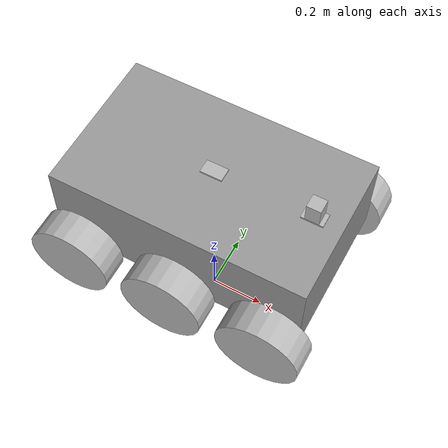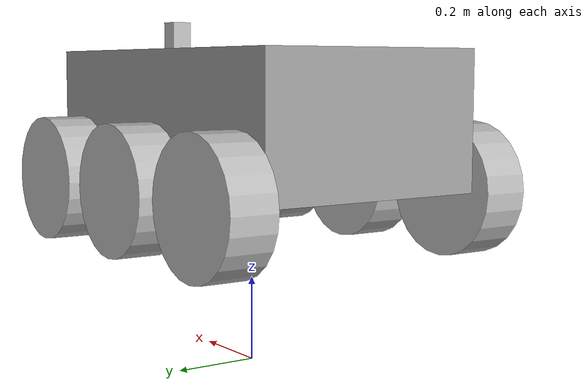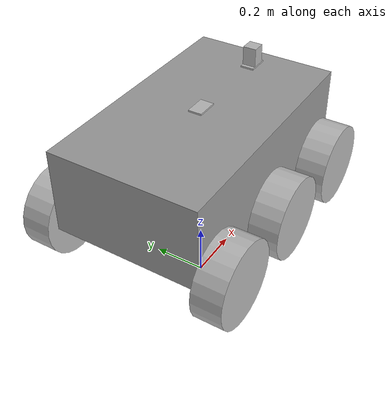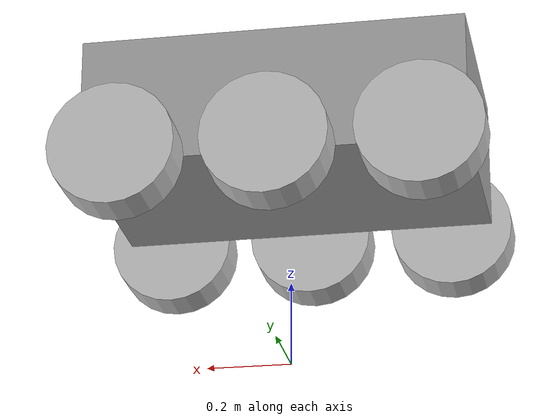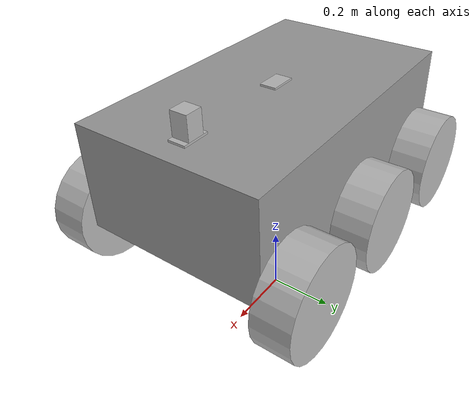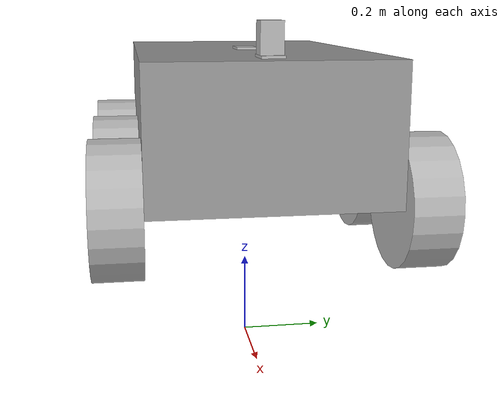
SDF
<sdf version='1.7'>
  <model name='panther'>
    <link name='base_footprint'>
      <inertial>
        <pose>0 0 0.586 0 -0 0</pose>
        <mass>55</mass>
        <inertia>
          <ixx>2.743</ixx>
          <ixy>0</ixy>
          <ixz>0</ixz>
          <iyy>5.705</iyy>
          <iyz>0</iyz>
          <izz>6.801</izz>
        </inertia>
      </inertial>
      <collision name='base_footprint_fixed_joint_lump__base_link_collision'>
        <pose>0 0 0.586 0 -0 0</pose>
        <geometry>
          <box>
            <size>0.914 0.53975 0.312</size>
          </box>
        </geometry>
        <surface>
          <contact>
            <ode/>
          </contact>
          <friction>
            <ode/>
          </friction>
        </surface>
      </collision>
      <collision name='base_footprint_fixed_joint_lump__hokuyo_link_collision_1'>
        <pose>0.356108 0 0.745 0 -0 0</pose>
        <geometry>
          <box>
            <size>0.079 0.05 0.006</size>
          </box>
        </geometry>
      </collision>
      <collision name='base_footprint_fixed_joint_lump__hokuyo_link_collision_2'>
        <pose>0.356108 0 0.783 0 -0 0</pose>
        <geometry>
          <box>
            <size>0.05 0.05 0.07</size>
          </box>
        </geometry>
      </collision>
      <collision name='base_footprint_fixed_joint_lump__imu_link_collision_3'>
        <pose>0 0 0.745 0 -0 0</pose>
        <geometry>
          <box>
            <size>0.079 0.05 0.006</size>
          </box>
        </geometry>
        <surface>
          <contact>
            <ode/>
          </contact>
          <friction>
            <ode/>
          </friction>
        </surface>
      </collision>
      <visual name='base_footprint_fixed_joint_lump__base_link_visual'>
        <pose>0 0 0.586 0 -0 0</pose>
        <geometry>
          <box>
            <size>0.914 0.53975 0.312</size>
          </box>
        </geometry>
        <material>
          <script>
            <name>Gazebo/Grey</name>
            <uri>file://media/materials/scripts/gazebo.material</uri>
          </script>
        </material>
      </visual>
      <visual name='base_footprint_fixed_joint_lump__hokuyo_link_visual_1'>
        <pose>0.356108 0 0.745 0 -0 0</pose>
        <geometry>
          <box>
            <size>0.079 0.05 0.006</size>
          </box>
        </geometry>
      </visual>
      <visual name='base_footprint_fixed_joint_lump__hokuyo_link_visual_2'>
        <pose>0.356108 0 0.783 0 -0 0</pose>
        <geometry>
          <box>
            <size>0.05 0.05 0.07</size>
          </box>
        </geometry>
      </visual>
      <visual name='base_footprint_fixed_joint_lump__imu_link_visual_3'>
        <pose>0 0 0.745 0 -0 0</pose>
        <geometry>
          <box>
            <size>0.079 0.05 0.006</size>
          </box>
        </geometry>
      </visual>
      <visual name='base_footprint_fixed_joint_lump__ml_wheel_link_visual_4'>
        <pose>0 0.323875 0.43 -1.5708 0 0</pose>
        <geometry>
          <cylinder>
            <length>0.108</length>
            <radius>0.15</radius>
          </cylinder>
        </geometry>
      </visual>
      <visual name='base_footprint_fixed_joint_lump__mr_wheel_link_visual_5'>
        <pose>0 -0.323875 0.43 1.5708 -0 0</pose>
        <geometry>
          <cylinder>
            <length>0.108</length>
            <radius>0.15</radius>
          </cylinder>
        </geometry>
      </visual>
      <sensor name='head_hokuyo_sensor' type='ray'>
        <visualize>1</visualize>
        <update_rate>100</update_rate>
        <ray>
          <scan>
            <horizontal>
              <samples>1080</samples>
              <resolution>1</resolution>
              <min_angle>-2.35619</min_angle>
              <max_angle>2.35619</max_angle>
            </horizontal>
          </scan>
          <range>
            <min>0.1</min>
            <max>30</max>
            <resolution>0.01</resolution>
          </range>
          <noise>
            <type>gaussian</type>
            <mean>0</mean>
            <stddev>0.01</stddev>
          </noise>
        </ray>
        <plugin name='gazebo_ros_head_hokuyo_controller' filename='libgazebo_ros_laser.so'>
          <topicName>/scan</topicName>
          <frameName>hokuyo_link</frameName>
        </plugin>
        <pose>0.356108 0 0.782 0 -0 0</pose>
      </sensor>
      <gravity>1</gravity>
      <sensor name='imu_sensor' type='imu'>
        <always_on>1</always_on>
        <update_rate>100</update_rate>
        <visualize>1</visualize>
        <topic>/imu/data_raw</topic>
        <plugin name='imu_plugin' filename='libgazebo_ros_imu_sensor.so'>
          <topicName>/imu/data_raw</topicName>
          <bodyName>imu_link</bodyName>
          <updateRateHZ>10.0</updateRateHZ>
          <gaussianNoise>0.0</gaussianNoise>
          <xyzOffset>0 0 0</xyzOffset>
          <rpyOffset>0 0 0</rpyOffset>
          <frameName>imu_link</frameName>
          <initialOrientationAsReference>0</initialOrientationAsReference>
        </plugin>
        <pose>0 0 0.742 0 -0 0</pose>
      </sensor>
    </link>
    <joint name='fl_wheel_joint' type='revolute'>
      <pose relative_to='base_footprint'>0.356108 0.323875 0.43 0 -0 0</pose>
      <parent>base_footprint</parent>
      <child>fl_wheel_link</child>
      <axis>
        <xyz>0 1 0</xyz>
        <limit>
          <lower>-1e+16</lower>
          <upper>1e+16</upper>
        </limit>
        <dynamics>
          <spring_reference>0</spring_reference>
          <spring_stiffness>0</spring_stiffness>
        </dynamics>
      </axis>
    </joint>
    <link name='fl_wheel_link'>
      <pose relative_to='fl_wheel_joint'>0 0 0 0 -0 0</pose>
      <inertial>
        <pose>0 0 0 1.5708 -0 0</pose>
        <mass>6</mass>
        <inertia>
          <ixx>0.047</ixx>
          <ixy>0</ixy>
          <ixz>0</ixz>
          <iyy>0.047</iyy>
          <iyz>0</iyz>
          <izz>0.078</izz>
        </inertia>
      </inertial>
      <collision name='fl_wheel_link_collision'>
        <pose>0 0 0 -1.5708 0 0</pose>
        <geometry>
          <cylinder>
            <length>0.108</length>
            <radius>0.15</radius>
          </cylinder>
        </geometry>
        <surface>
          <friction>
            <ode>
              <mu>0.5</mu>
              <mu2>1</mu2>
              <slip1>0.0016</slip1>
              <slip2>0</slip2>
              <fdir1>0 0 1</fdir1>
            </ode>
          </friction>
          <contact>
            <ode/>
          </contact>
        </surface>
      </collision>
      <visual name='fl_wheel_link_visual'>
        <pose>0 0 0 -1.5708 0 0</pose>
        <geometry>
          <cylinder>
            <length>0.108</length>
            <radius>0.15</radius>
          </cylinder>
        </geometry>
      </visual>
    </link>
    <joint name='fr_wheel_joint' type='revolute'>
      <pose relative_to='base_footprint'>0.356108 -0.323875 0.43 0 -0 0</pose>
      <parent>base_footprint</parent>
      <child>fr_wheel_link</child>
      <axis>
        <xyz>0 1 0</xyz>
        <limit>
          <lower>-1e+16</lower>
          <upper>1e+16</upper>
        </limit>
        <dynamics>
          <spring_reference>0</spring_reference>
          <spring_stiffness>0</spring_stiffness>
        </dynamics>
      </axis>
    </joint>
    <link name='fr_wheel_link'>
      <pose relative_to='fr_wheel_joint'>0 0 0 0 -0 0</pose>
      <inertial>
        <pose>0 0 0 1.5708 -0 0</pose>
        <mass>6</mass>
        <inertia>
          <ixx>0.047</ixx>
          <ixy>0</ixy>
          <ixz>0</ixz>
          <iyy>0.047</iyy>
          <iyz>0</iyz>
          <izz>0.078</izz>
        </inertia>
      </inertial>
      <collision name='fr_wheel_link_collision'>
        <pose>0 0 0 1.5708 -0 0</pose>
        <geometry>
          <cylinder>
            <length>0.108</length>
            <radius>0.15</radius>
          </cylinder>
        </geometry>
        <surface>
          <friction>
            <ode>
              <mu>0.5</mu>
              <mu2>1</mu2>
              <slip1>0.0016</slip1>
              <slip2>0</slip2>
              <fdir1>0 0 1</fdir1>
            </ode>
          </friction>
          <contact>
            <ode/>
          </contact>
        </surface>
      </collision>
      <visual name='fr_wheel_link_visual'>
        <pose>0 0 0 1.5708 -0 0</pose>
        <geometry>
          <cylinder>
            <length>0.108</length>
            <radius>0.15</radius>
          </cylinder>
        </geometry>
      </visual>
    </link>
    <joint name='rl_wheel_joint' type='revolute'>
      <pose relative_to='base_footprint'>-0.356108 0.323875 0.43 0 -0 0</pose>
      <parent>base_footprint</parent>
      <child>rl_wheel_link</child>
      <axis>
        <xyz>0 1 0</xyz>
        <limit>
          <lower>-1e+16</lower>
          <upper>1e+16</upper>
        </limit>
        <dynamics>
          <spring_reference>0</spring_reference>
          <spring_stiffness>0</spring_stiffness>
        </dynamics>
      </axis>
    </joint>
    <link name='rl_wheel_link'>
      <pose relative_to='rl_wheel_joint'>0 0 0 0 -0 0</pose>
      <inertial>
        <pose>0 0 0 1.5708 -0 0</pose>
        <mass>6</mass>
        <inertia>
          <ixx>0.047</ixx>
          <ixy>0</ixy>
          <ixz>0</ixz>
          <iyy>0.047</iyy>
          <iyz>0</iyz>
          <izz>0.078</izz>
        </inertia>
      </inertial>
      <collision name='rl_wheel_link_collision'>
        <pose>0 0 0 -1.5708 0 0</pose>
        <geometry>
          <cylinder>
            <length>0.108</length>
            <radius>0.15</radius>
          </cylinder>
        </geometry>
        <surface>
          <friction>
            <ode>
              <mu>0.5</mu>
              <mu2>1</mu2>
              <slip1>0.0016</slip1>
              <slip2>0</slip2>
              <fdir1>0 0 1</fdir1>
            </ode>
          </friction>
          <contact>
            <ode/>
          </contact>
        </surface>
      </collision>
      <visual name='rl_wheel_link_visual'>
        <pose>0 0 0 -1.5708 0 0</pose>
        <geometry>
          <cylinder>
            <length>0.108</length>
            <radius>0.15</radius>
          </cylinder>
        </geometry>
      </visual>
    </link>
    <joint name='rr_wheel_joint' type='revolute'>
      <pose relative_to='base_footprint'>-0.356108 -0.323875 0.43 0 -0 0</pose>
      <parent>base_footprint</parent>
      <child>rr_wheel_link</child>
      <axis>
        <xyz>0 1 0</xyz>
        <limit>
          <lower>-1e+16</lower>
          <upper>1e+16</upper>
        </limit>
        <dynamics>
          <spring_reference>0</spring_reference>
          <spring_stiffness>0</spring_stiffness>
        </dynamics>
      </axis>
    </joint>
    <link name='rr_wheel_link'>
      <pose relative_to='rr_wheel_joint'>0 0 0 0 -0 0</pose>
      <inertial>
        <pose>0 0 0 1.5708 -0 0</pose>
        <mass>6</mass>
        <inertia>
          <ixx>0.047</ixx>
          <ixy>0</ixy>
          <ixz>0</ixz>
          <iyy>0.047</iyy>
          <iyz>0</iyz>
          <izz>0.078</izz>
        </inertia>
      </inertial>
      <collision name='rr_wheel_link_collision'>
        <pose>0 0 0 1.5708 -0 0</pose>
        <geometry>
          <cylinder>
            <length>0.108</length>
            <radius>0.15</radius>
          </cylinder>
        </geometry>
        <surface>
          <friction>
            <ode>
              <mu>0.5</mu>
              <mu2>1</mu2>
              <slip1>0.0016</slip1>
              <slip2>0</slip2>
              <fdir1>0 0 1</fdir1>
            </ode>
          </friction>
          <contact>
            <ode/>
          </contact>
        </surface>
      </collision>
      <visual name='rr_wheel_link_visual'>
        <pose>0 0 0 1.5708 -0 0</pose>
        <geometry>
          <cylinder>
            <length>0.108</length>
            <radius>0.15</radius>
          </cylinder>
        </geometry>
      </visual>
    </link>
    <plugin name='skid_steer_drive_controller' filename='libgazebo_ros_skid_steer_drive.so'>
      <updateRate>200.0</updateRate>
      <robotNamespace/>
      <leftFrontJoint>fl_wheel_joint</leftFrontJoint>
      <rightFrontJoint>fr_wheel_joint</rightFrontJoint>
      <leftRearJoint>rl_wheel_joint</leftRearJoint>
      <rightRearJoint>rr_wheel_joint</rightRearJoint>
      <wheelSeparation>0.4</wheelSeparation>
      <wheelDiameter>0.215</wheelDiameter>
      <robotBaseFrame>base_footprint</robotBaseFrame>
      <torque>100</torque>
      <commandTopic>cmd_vel</commandTopic>
      <odometryFrame>odom</odometryFrame>
      <broadcastTF>1</broadcastTF>
    </plugin>
    <frame name='laser_joint' attached_to='hokuyo_link'>
      <pose>0 0 0.04 0 -0 0</pose>
    </frame>
    <frame name='laser_frame' attached_to='laser_joint'/>
    <frame name='hokuyo_joint' attached_to='base_link'>
      <pose>0.356108 0 0.449 0 -0 0</pose>
    </frame>
    <frame name='hokuyo_link' attached_to='hokuyo_joint'/>
    <frame name='imu_joint' attached_to='base_link'>
      <pose>0 0 0.449 0 -0 0</pose>
    </frame>
    <frame name='imu_link' attached_to='imu_joint'/>
    <frame name='ml_wheel_joint' attached_to='base_link'>
      <pose>0 0.323875 0.137 0 -0 0</pose>
    </frame>
    <frame name='ml_wheel_link' attached_to='ml_wheel_joint'/>
    <frame name='mr_wheel_joint' attached_to='base_link'>
      <pose>0 -0.323875 0.137 0 -0 0</pose>
    </frame>
    <frame name='mr_wheel_link' attached_to='mr_wheel_joint'/>
    <frame name='base_joint' attached_to='base_footprint'>
      <pose>0 0 0.293 0 -0 0</pose>
    </frame>
    <frame name='base_link' attached_to='base_joint'/>
  </model>
</sdf>
